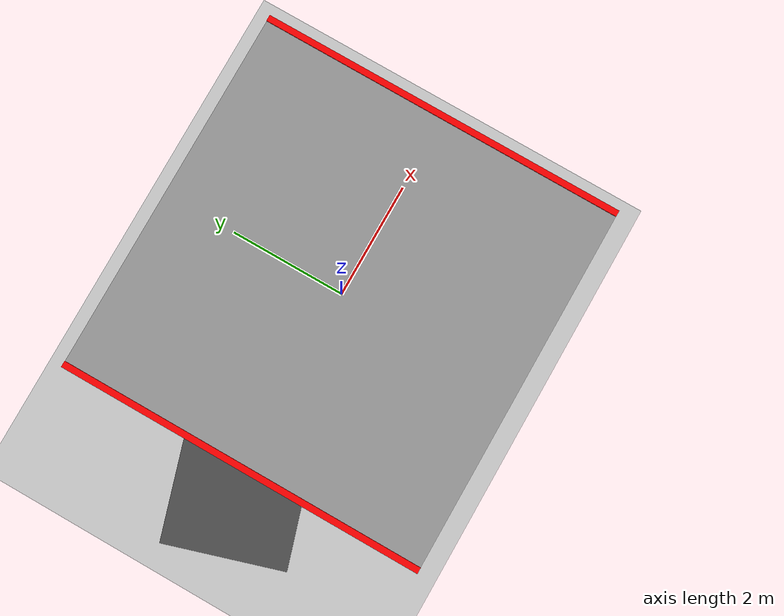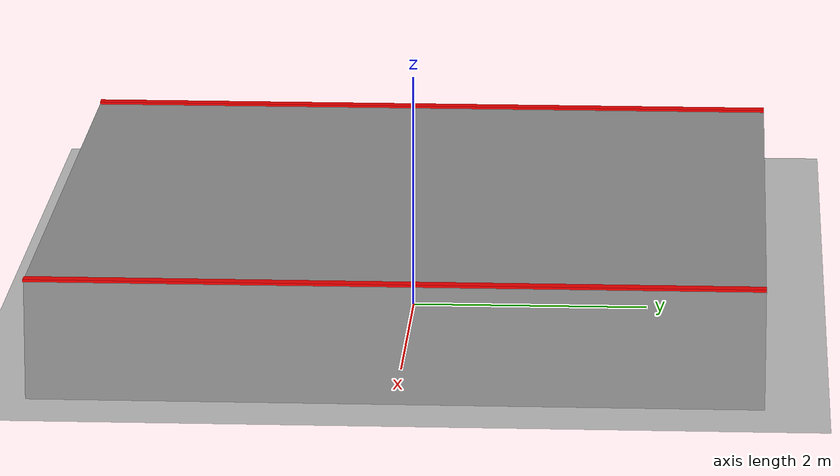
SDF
<?xml version="1.0" ?>
<sdf version="1.7">
  <world name="lab_edge_world">

    <!-- LIGHT -->
    <light name="lab_light" type="directional">
      <pose>0 0 15 0 0 0</pose>
      <diffuse>1 1 1 1</diffuse>
      <specular>0.2 0.2 0.2 1</specular>
      <direction>-0.3 0.1 -1</direction>
    </light>

    <!-- MAIN LAB FLOOR -->
    <model name="lab_floor">
      <static>true</static>
      <link name="link">
        <collision name="collision">
          <geometry>
            <plane>
              <normal>0 0 1</normal>
              <size>30 30</size>
            </plane>
          </geometry>
        </collision>
        <visual name="visual">
          <geometry>
            <plane>
              <normal>0 0 1</normal>
              <size>30 30</size>
            </plane>
          </geometry>
          <material>
            <ambient>0.8 0.8 0.8 1</ambient>
            <diffuse>0.8 0.8 0.8 1</diffuse>
          </material>
        </visual>
      </link>
    </model>

    <!-- RAISED TEST PLATFORM -->
    <model name="edge_platform">
      <static>true</static>
      <pose>0 0 0.5 0 0 0</pose>

      <link name="link">
        <collision name="collision">
          <geometry>
            <box>
              <size>6 6 1</size>
            </box>
          </geometry>
        </collision>

        <visual name="visual">
          <geometry>
            <box>
              <size>6 6 1</size>
            </box>
          </geometry>
          <material>
            <ambient>0.6 0.6 0.6 1</ambient>
            <diffuse>0.6 0.6 0.6 1</diffuse>
          </material>
        </visual>
      </link>
    </model>

    <!-- RAMP (so robot can reach platform) -->
    <model name="ramp">
      <static>true</static>
      <pose>-3 0 0.25 0 0 0.3</pose>

      <link name="link">
        <collision name="collision">
          <geometry>
            <box>
              <size>3 2 0.2</size>
            </box>
          </geometry>
        </collision>

        <visual name="visual">
          <geometry>
            <box>
              <size>3 2 0.2</size>
            </box>
          </geometry>
          <material>
            <ambient>0.3 0.3 0.3 1</ambient>
          </material>
        </visual>
      </link>
    </model>

    <!-- EDGE MARKERS (visual cues for CV) -->
    <model name="edge_marker_1">
      <static>true</static>
      <pose>3 0 1.01 0 0 0</pose>
      <link name="link">
        <visual name="visual">
          <geometry>
            <box>
              <size>0.1 6 0.02</size>
            </box>
          </geometry>
          <material>
            <ambient>1 0 0 1</ambient>
          </material>
        </visual>
      </link>
    </model>

    <model name="edge_marker_2">
      <static>true</static>
      <pose>-3 0 1.01 0 0 0</pose>
      <link name="link">
        <visual name="visual">
          <geometry>
            <box>
              <size>0.1 6 0.02</size>
            </box>
          </geometry>
          <material>
            <ambient>1 0 0 1</ambient>
          </material>
        </visual>
      </link>
    </model>

  </world>
</sdf>
